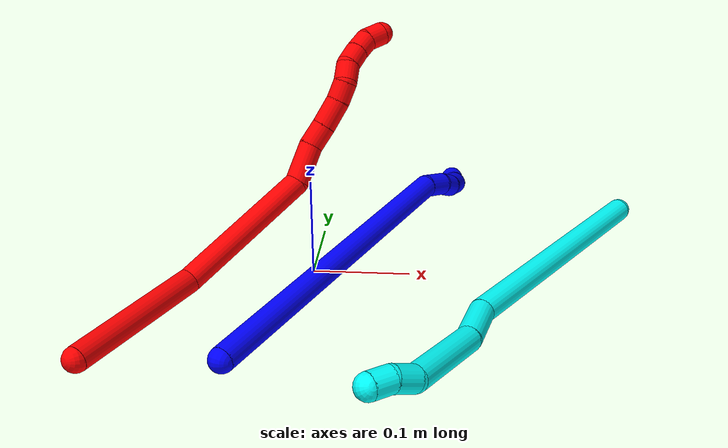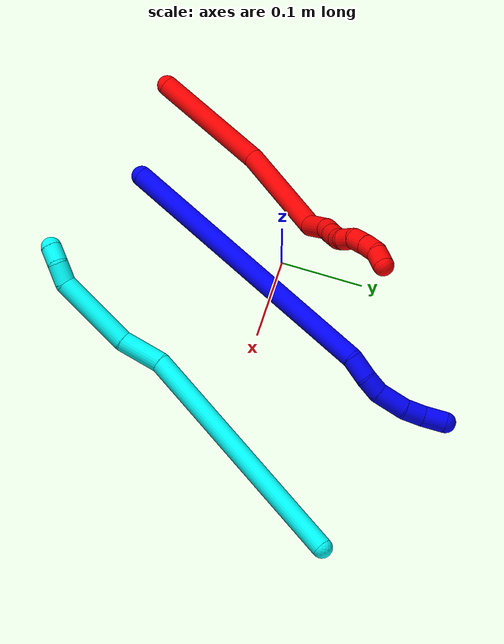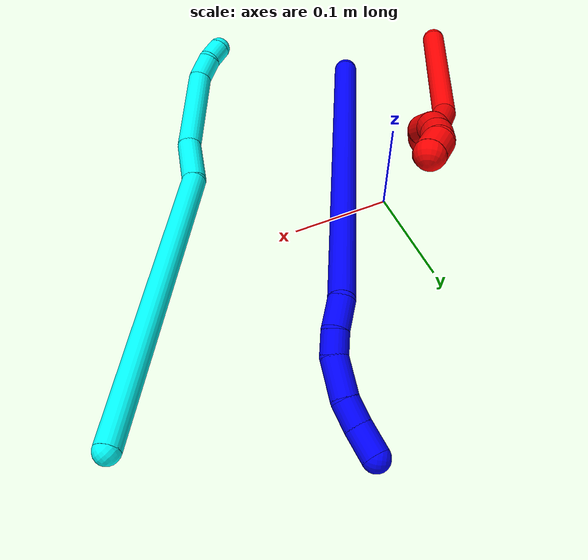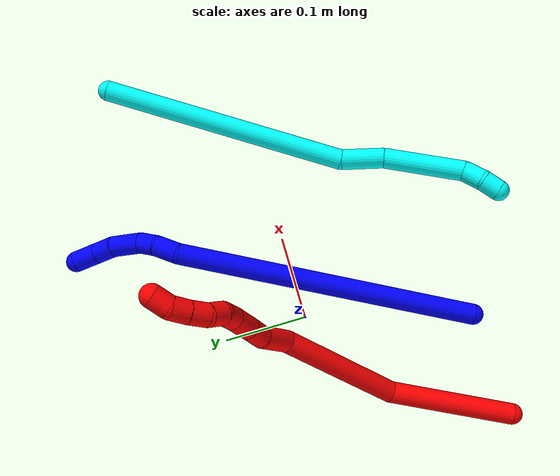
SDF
<sdf version="1.7">
 <world name="default">
  <plugin name="TubeGeneratorPlugin" filename="libtube_generator_plugin.so"/>
  <model name="photoneo_s_sensor">
   <static>1</static>
   <pose>0 0 2 1.57079 1.57079 3.14159</pose>
   <link name="link">
    <inertial><mass>0.1</mass></inertial>
    <sensor name="sensor" type="depth">
     <update_rate>30</update_rate>
     <camera>
      <horizontal_fov>1.22</horizontal_fov>
      <image><width>1920</width><height>1200</height><format>B8G8R8</format></image>
      <clip><near>0.1</near><far>4</far></clip>
      <depth_camera><output>points</output></depth_camera>
     </camera>
     <plugin name="camera_plugin" filename="libgazebo_ros_depth_camera.so">
      <baseline>0.2</baseline>
      <alwaysOn>1</alwaysOn>
      <updateRate>0.0</updateRate>
      <cameraName>camera_ir</cameraName>
      <imageTopicName>/camera/color/image_raw</imageTopicName>
      <cameraInfoTopicName>/camera/color/camera_info</cameraInfoTopicName>
      <depthImageTopicName>/camera/depth/image_raw</depthImageTopicName>
      <depthImageCameraInfoTopicName>/camera/depth/camera_info</depthImageCameraInfoTopicName>
      <pointCloudTopicName>/camera/depth/points</pointCloudTopicName>
      <frameName>fr_optical</frameName>
      <pointCloudCutoff>0.1</pointCloudCutoff>
      <pointCloudCutoffMax>2.0</pointCloudCutoffMax>
      <distortionK1>0</distortionK1>
      <distortionK2>0</distortionK2>
      <distortionK3>0</distortionK3>
      <distortionT1>0</distortionT1>
      <distortionT2>0</distortionT2>
      <CxPrime>0</CxPrime>
      <Cx>0</Cx>
      <Cy>0</Cy>
      <focalLength>0</focalLength>
      <hackBaseline>0</hackBaseline>
     </plugin>
    </sensor>
   </link>
  </model>
  <gravity>0 0 -9.8</gravity>
  <magnetic_field>6e-06 2.3e-05 -4.2e-05</magnetic_field>
  <atmosphere type="adiabatic"/>
  <physics name="default_physics" default="0" type="ode">
   <max_step_size>0.003</max_step_size>
   <real_time_factor>1</real_time_factor>
   <real_time_update_rate>1000</real_time_update_rate>
   <max_contacts>10000</max_contacts>
   <ode>
    <solver>
     <type>quick</type>
     <iters>100</iters>
     <sor>1.3</sor>
     <use_dynamic_moi_rescaling>0</use_dynamic_moi_rescaling>
    </solver>
    <constraints>
     <contact_max_correcting_vel>0</contact_max_correcting_vel>
     <contact_surface_layer>0.001</contact_surface_layer>
     <cfm>0</cfm>
     <erp>0.2</erp>
    </constraints>
   </ode>
  </physics>
  <scene><ambient>0.4 0.4 0.4 1</ambient><background>0.7 0.7 0.7 1</background><shadows>0</shadows></scene>
  <audio><device>default</device></audio>
  <spherical_coordinates>
   <surface_model>EARTH_WGS84</surface_model>
   <latitude_deg>0</latitude_deg>
   <longitude_deg>0</longitude_deg>
   <elevation>0</elevation>
   <heading_deg>0</heading_deg>
  </spherical_coordinates>
  <model name="bin">
   <static>1</static>
   <link name="bottom">
    <collision name="collision-bottom">
     <pose>0 0 -0.01 0 -0 0</pose>
     <geometry><box><size>0.8 0.6 0.02</size></box></geometry>
     <surface>
      <friction><ode><mu>100</mu><mu2>100</mu2></ode></friction>
      <contact><collide_bitmask>65535</collide_bitmask></contact>
     </surface>
    </collision>
   </link>
   <link name="west_wall">
    <collision name="collision-west_wall">
     <pose>-0.41 0 0.1 0 -0 0</pose>
     <geometry><box><size>0.02 0.6 0.2</size></box></geometry>
     <surface>
      <friction><ode><mu>100</mu><mu2>100</mu2></ode></friction>
      <contact><collide_bitmask>65535</collide_bitmask></contact>
     </surface>
    </collision>
   </link>
   <link name="east_wall">
    <collision name="collision-east_wall">
     <pose>0.41 0 0.1 0 -0 0</pose>
     <geometry><box><size>0.02 0.6 0.2</size></box></geometry>
     <surface>
      <friction><ode><mu>100</mu><mu2>100</mu2></ode></friction>
      <contact><collide_bitmask>65535</collide_bitmask></contact>
     </surface>
    </collision>
   </link>
   <link name="south_wall">
    <collision name="collision-south_wall">
     <pose>0 -0.31 0.1 0 -0 0</pose>
     <geometry><box><size>0.8 0.02 0.2</size></box></geometry>
     <surface>
      <friction><ode><mu>100</mu><mu2>100</mu2></ode></friction>
      <contact><collide_bitmask>65535</collide_bitmask></contact>
     </surface>
    </collision>
   </link>
   <link name="north_wall">
    <collision name="collision-north_wall">
     <pose>0 0.31 0.1 0 -0 0</pose>
     <geometry><box><size>0.8 0.02 0.2</size></box></geometry>
     <surface>
      <friction><ode><mu>100</mu><mu2>100</mu2></ode></friction>
      <contact><collide_bitmask>65535</collide_bitmask></contact>
     </surface>
    </collision>
   </link>
  </model>
  <model name="1">
   <static>0</static>
   <link name="1">
    <collision name="collision-cylinder-e_1_1_4">
     <pose>0.099813 0.14904 -0.016868 -1.68349 0.587169 -0.652725</pose>
     <geometry><cylinder><radius>0.0125</radius><length>0.360333</length></cylinder></geometry>
     <surface>
      <friction><ode><mu>1.16</mu><mu2>1.16</mu2><slip1>0</slip1><slip2>0</slip2></ode></friction>
      <contact><ode><kp>1e+06</kp><kd>1</kd><max_vel>0</max_vel><min_depth>0.001</min_depth></ode></contact>
     </surface>
    </collision>
    <visual name="visual-cylinder-e_1_1_4">
     <pose>0.099813 0.14904 -0.016868 -1.68349 0.587169 -0.652725</pose>
     <geometry><cylinder><radius>0.0125</radius><length>0.360333</length></cylinder></geometry>
     <material><ambient>0 0 1 1</ambient></material>
    </visual>
    <collision name="collision-cylinder-e_2_4_5">
     <pose>0.211166 0.306949 -0.033091 -1.49834 0.914186 -0.858026</pose>
     <geometry><cylinder><radius>0.0125</radius><length>0.029138</length></cylinder></geometry>
     <surface>
      <friction><ode><mu>1.16</mu><mu2>1.16</mu2><slip1>0</slip1><slip2>0</slip2></ode></friction>
      <contact><ode><kp>1e+06</kp><kd>1</kd><max_vel>0</max_vel><min_depth>0.001</min_depth></ode></contact>
     </surface>
    </collision>
    <visual name="visual-cylinder-e_2_4_5">
     <pose>0.211166 0.306949 -0.033091 -1.49834 0.914186 -0.858026</pose>
     <geometry><cylinder><radius>0.0125</radius><length>0.029138</length></cylinder></geometry>
     <material><ambient>0 0 1 1</ambient></material>
    </visual>
    <collision name="collision-cylinder-e_3_5_6">
     <pose>0.232612 0.320755 -0.033668 -1.81334 1.09662 -1.32524</pose>
     <geometry><cylinder><radius>0.0125</radius><length>0.022269</length></cylinder></geometry>
     <surface>
      <friction><ode><mu>1.16</mu><mu2>1.16</mu2><slip1>0</slip1><slip2>0</slip2></ode></friction>
      <contact><ode><kp>1e+06</kp><kd>1</kd><max_vel>0</max_vel><min_depth>0.001</min_depth></ode></contact>
     </surface>
    </collision>
    <visual name="visual-cylinder-e_3_5_6">
     <pose>0.232612 0.320755 -0.033668 -1.81334 1.09662 -1.32524</pose>
     <geometry><cylinder><radius>0.0125</radius><length>0.022269</length></cylinder></geometry>
     <material><ambient>0 0 1 1</ambient></material>
    </visual>
    <collision name="collision-cylinder-e_4_6_7">
     <pose>0.256627 0.334915 -0.042009 -2.22809 0.880444 -1.5285</pose>
     <geometry><cylinder><radius>0.0125</radius><length>0.036598</length></cylinder></geometry>
     <surface>
      <friction><ode><mu>1.16</mu><mu2>1.16</mu2><slip1>0</slip1><slip2>0</slip2></ode></friction>
      <contact><ode><kp>1e+06</kp><kd>1</kd><max_vel>0</max_vel><min_depth>0.001</min_depth></ode></contact>
     </surface>
    </collision>
    <visual name="visual-cylinder-e_4_6_7">
     <pose>0.256627 0.334915 -0.042009 -2.22809 0.880444 -1.5285</pose>
     <geometry><cylinder><radius>0.0125</radius><length>0.036598</length></cylinder></geometry>
     <material><ambient>0 0 1 1</ambient></material>
    </visual>
    <collision name="collision-cylinder-e_5_7_8">
     <pose>0.279228 0.348894 -0.056083 -2.54193 0.789396 -1.86466</pose>
     <geometry><cylinder><radius>0.0125</radius><length>0.023922</length></cylinder></geometry>
     <surface>
      <friction><ode><mu>1.16</mu><mu2>1.16</mu2><slip1>0</slip1><slip2>0</slip2></ode></friction>
      <contact><ode><kp>1e+06</kp><kd>1</kd><max_vel>0</max_vel><min_depth>0.001</min_depth></ode></contact>
     </surface>
    </collision>
    <visual name="visual-cylinder-e_5_7_8">
     <pose>0.279228 0.348894 -0.056083 -2.54193 0.789396 -1.86466</pose>
     <geometry><cylinder><radius>0.0125</radius><length>0.023922</length></cylinder></geometry>
     <material><ambient>0 0 1 1</ambient></material>
    </visual>
    <collision name="collision-cylinder-e_6_8_2">
     <pose>0.296079 0.360671 -0.071591 -2.45417 0.646966 -1.50544</pose>
     <geometry><cylinder><radius>0.0125</radius><length>0.027739</length></cylinder></geometry>
     <surface>
      <friction><ode><mu>1.16</mu><mu2>1.16</mu2><slip1>0</slip1><slip2>0</slip2></ode></friction>
      <contact><ode><kp>1e+06</kp><kd>1</kd><max_vel>0</max_vel><min_depth>0.001</min_depth></ode></contact>
     </surface>
    </collision>
    <visual name="visual-cylinder-e_6_8_2">
     <pose>0.296079 0.360671 -0.071591 -2.45417 0.646966 -1.50544</pose>
     <geometry><cylinder><radius>0.0125</radius><length>0.027739</length></cylinder></geometry>
     <material><ambient>0 0 1 1</ambient></material>
    </visual>
    <collision name="collision-sphere-2">
     <pose>0.30444 0.367693 -0.080144 0 -0 0</pose>
     <geometry><sphere><radius>0.0125</radius></sphere></geometry>
     <surface>
      <friction><ode><mu>1.16</mu><mu2>1.16</mu2><slip1>0</slip1><slip2>0</slip2></ode></friction>
      <contact><ode><kp>1e+06</kp><kd>1</kd><max_vel>0</max_vel><min_depth>0.001</min_depth></ode></contact>
     </surface>
    </collision>
    <visual name="visual-sphere-2">
     <pose>0.30444 0.367693 -0.080144 0 -0 0</pose>
     <geometry><sphere><radius>0.0125</radius></sphere></geometry>
     <material><ambient>0 0 1 1</ambient></material>
    </visual>
    <collision name="collision-sphere-4">
     <pose>0.199627 0.298079 -0.033735 0 -0 0</pose>
     <geometry><sphere><radius>0.0125</radius></sphere></geometry>
     <surface>
      <friction><ode><mu>1.16</mu><mu2>1.16</mu2><slip1>0</slip1><slip2>0</slip2></ode></friction>
      <contact><ode><kp>1e+06</kp><kd>1</kd><max_vel>0</max_vel><min_depth>0.001</min_depth></ode></contact>
     </surface>
    </collision>
    <visual name="visual-sphere-4">
     <pose>0.199627 0.298079 -0.033735 0 -0 0</pose>
     <geometry><sphere><radius>0.0125</radius></sphere></geometry>
     <material><ambient>0 0 1 1</ambient></material>
    </visual>
    <collision name="collision-sphere-1">
     <geometry><sphere><radius>0.0125</radius></sphere></geometry>
     <surface>
      <friction><ode><mu>1.16</mu><mu2>1.16</mu2><slip1>0</slip1><slip2>0</slip2></ode></friction>
      <contact><ode><kp>1e+06</kp><kd>1</kd><max_vel>0</max_vel><min_depth>0.001</min_depth></ode></contact>
     </surface>
    </collision>
    <visual name="visual-sphere-1">
     <geometry><sphere><radius>0.0125</radius></sphere></geometry>
     <material><ambient>0 0 1 1</ambient></material>
    </visual>
    <collision name="collision-sphere-8">
     <pose>0.287719 0.353649 -0.063037 0 -0 0</pose>
     <geometry><sphere><radius>0.0125</radius></sphere></geometry>
     <surface>
      <friction><ode><mu>1.16</mu><mu2>1.16</mu2><slip1>0</slip1><slip2>0</slip2></ode></friction>
      <contact><ode><kp>1e+06</kp><kd>1</kd><max_vel>0</max_vel><min_depth>0.001</min_depth></ode></contact>
     </surface>
    </collision>
    <visual name="visual-sphere-8">
     <pose>0.287719 0.353649 -0.063037 0 -0 0</pose>
     <geometry><sphere><radius>0.0125</radius></sphere></geometry>
     <material><ambient>0 0 1 1</ambient></material>
    </visual>
    <collision name="collision-sphere-5">
     <pose>0.222706 0.315819 -0.032447 0 -0 0</pose>
     <geometry><sphere><radius>0.0125</radius></sphere></geometry>
     <surface>
      <friction><ode><mu>1.16</mu><mu2>1.16</mu2><slip1>0</slip1><slip2>0</slip2></ode></friction>
      <contact><ode><kp>1e+06</kp><kd>1</kd><max_vel>0</max_vel><min_depth>0.001</min_depth></ode></contact>
     </surface>
    </collision>
    <visual name="visual-sphere-5">
     <pose>0.222706 0.315819 -0.032447 0 -0 0</pose>
     <geometry><sphere><radius>0.0125</radius></sphere></geometry>
     <material><ambient>0 0 1 1</ambient></material>
    </visual>
    <collision name="collision-sphere-6">
     <pose>0.242518 0.32569 -0.034889 0 -0 0</pose>
     <geometry><sphere><radius>0.0125</radius></sphere></geometry>
     <surface>
      <friction><ode><mu>1.16</mu><mu2>1.16</mu2><slip1>0</slip1><slip2>0</slip2></ode></friction>
      <contact><ode><kp>1e+06</kp><kd>1</kd><max_vel>0</max_vel><min_depth>0.001</min_depth></ode></contact>
     </surface>
    </collision>
    <visual name="visual-sphere-6">
     <pose>0.242518 0.32569 -0.034889 0 -0 0</pose>
     <geometry><sphere><radius>0.0125</radius></sphere></geometry>
     <material><ambient>0 0 1 1</ambient></material>
    </visual>
    <collision name="collision-sphere-7">
     <pose>0.270736 0.34414 -0.049129 0 -0 0</pose>
     <geometry><sphere><radius>0.0125</radius></sphere></geometry>
     <surface>
      <friction><ode><mu>1.16</mu><mu2>1.16</mu2><slip1>0</slip1><slip2>0</slip2></ode></friction>
      <contact><ode><kp>1e+06</kp><kd>1</kd><max_vel>0</max_vel><min_depth>0.001</min_depth></ode></contact>
     </surface>
    </collision>
    <visual name="visual-sphere-7">
     <pose>0.270736 0.34414 -0.049129 0 -0 0</pose>
     <geometry><sphere><radius>0.0125</radius></sphere></geometry>
     <material><ambient>0 0 1 1</ambient></material>
    </visual>
    <inertial>
     <pose>0.143168 0.200798 -0.025314 0 -0 0</pose>
     <mass>0.5</mass>
     <inertia>
      <ixx>0.000625</ixx>
      <ixy>0</ixy>
      <ixz>0</ixz>
      <iyy>-0.000992</iyy>
      <iyz>0</iyz>
      <izz>-0.00543</izz>
     </inertia>
    </inertial>
   </link>
   <pose>-0.053591 -0.195094 0.011497 1.47543 0.866222 0.913418</pose>
  </model>
  <model name="2">
   <static>0</static>
   <link name="2">
    <collision name="collision-cylinder-e_1_1_4">
     <pose>-0.021029 0.00911 -0.070525 -3.01313 -0.287527 2.30536</pose>
     <geometry><cylinder><radius>0.0125</radius><length>0.148311</length></cylinder></geometry>
     <surface>
      <friction><ode><mu>1.16</mu><mu2>1.16</mu2><slip1>0</slip1><slip2>0</slip2></ode></friction>
      <contact><ode><kp>1e+06</kp><kd>1</kd><max_vel>0</max_vel><min_depth>0.001</min_depth></ode></contact>
     </surface>
    </collision>
    <visual name="visual-cylinder-e_1_1_4">
     <pose>-0.021029 0.00911 -0.070525 -3.01313 -0.287527 2.30536</pose>
     <geometry><cylinder><radius>0.0125</radius><length>0.148311</length></cylinder></geometry>
     <material><ambient>1 0 0 1</ambient></material>
    </visual>
    <collision name="collision-cylinder-e_2_4_5">
     <pose>-0.061336 0.060122 -0.201105 -2.53238 -0.257422 0.781061</pose>
     <geometry><cylinder><radius>0.0125</radius><length>0.151445</length></cylinder></geometry>
     <surface>
      <friction><ode><mu>1.16</mu><mu2>1.16</mu2><slip1>0</slip1><slip2>0</slip2></ode></friction>
      <contact><ode><kp>1e+06</kp><kd>1</kd><max_vel>0</max_vel><min_depth>0.001</min_depth></ode></contact>
     </surface>
    </collision>
    <visual name="visual-cylinder-e_2_4_5">
     <pose>-0.061336 0.060122 -0.201105 -2.53238 -0.257422 0.781061</pose>
     <geometry><cylinder><radius>0.0125</radius><length>0.151445</length></cylinder></geometry>
     <material><ambient>1 0 0 1</ambient></material>
    </visual>
    <collision name="collision-cylinder-e_3_5_6">
     <pose>-0.09277 0.116228 -0.27082 -2.16815 -0.615843 1.0823</pose>
     <geometry><cylinder><radius>0.0125</radius><length>0.042087</length></cylinder></geometry>
     <surface>
      <friction><ode><mu>1.16</mu><mu2>1.16</mu2><slip1>0</slip1><slip2>0</slip2></ode></friction>
      <contact><ode><kp>1e+06</kp><kd>1</kd><max_vel>0</max_vel><min_depth>0.001</min_depth></ode></contact>
     </surface>
    </collision>
    <visual name="visual-cylinder-e_3_5_6">
     <pose>-0.09277 0.116228 -0.27082 -2.16815 -0.615843 1.0823</pose>
     <geometry><cylinder><radius>0.0125</radius><length>0.042087</length></cylinder></geometry>
     <material><ambient>1 0 0 1</ambient></material>
    </visual>
    <collision name="collision-cylinder-e_4_6_7">
     <pose>-0.109232 0.14073 -0.286199 -2.07754 -0.350478 0.584357</pose>
     <geometry><cylinder><radius>0.0125</radius><length>0.025084</length></cylinder></geometry>
     <surface>
      <friction><ode><mu>1.16</mu><mu2>1.16</mu2><slip1>0</slip1><slip2>0</slip2></ode></friction>
      <contact><ode><kp>1e+06</kp><kd>1</kd><max_vel>0</max_vel><min_depth>0.001</min_depth></ode></contact>
     </surface>
    </collision>
    <visual name="visual-cylinder-e_4_6_7">
     <pose>-0.109232 0.14073 -0.286199 -2.07754 -0.350478 0.584357</pose>
     <geometry><cylinder><radius>0.0125</radius><length>0.025084</length></cylinder></geometry>
     <material><ambient>1 0 0 1</ambient></material>
    </visual>
    <collision name="collision-cylinder-e_5_7_8">
     <pose>-0.119283 0.163503 -0.298205 -2.03781 -0.390137 0.621037</pose>
     <geometry><cylinder><radius>0.0125</radius><length>0.030209</length></cylinder></geometry>
     <surface>
      <friction><ode><mu>1.16</mu><mu2>1.16</mu2><slip1>0</slip1><slip2>0</slip2></ode></friction>
      <contact><ode><kp>1e+06</kp><kd>1</kd><max_vel>0</max_vel><min_depth>0.001</min_depth></ode></contact>
     </surface>
    </collision>
    <visual name="visual-cylinder-e_5_7_8">
     <pose>-0.119283 0.163503 -0.298205 -2.03781 -0.390137 0.621037</pose>
     <geometry><cylinder><radius>0.0125</radius><length>0.030209</length></cylinder></geometry>
     <material><ambient>1 0 0 1</ambient></material>
    </visual>
    <collision name="collision-cylinder-e_6_8_9">
     <pose>-0.130183 0.184756 -0.30773 -1.92386 -0.503602 0.706956</pose>
     <geometry><cylinder><radius>0.0125</radius><length>0.021365</length></cylinder></geometry>
     <surface>
      <friction><ode><mu>1.16</mu><mu2>1.16</mu2><slip1>0</slip1><slip2>0</slip2></ode></friction>
      <contact><ode><kp>1e+06</kp><kd>1</kd><max_vel>0</max_vel><min_depth>0.001</min_depth></ode></contact>
     </surface>
    </collision>
    <visual name="visual-cylinder-e_6_8_9">
     <pose>-0.130183 0.184756 -0.30773 -1.92386 -0.503602 0.706956</pose>
     <geometry><cylinder><radius>0.0125</radius><length>0.021365</length></cylinder></geometry>
     <material><ambient>1 0 0 1</ambient></material>
    </visual>
    <collision name="collision-cylinder-e_7_9_10">
     <pose>-0.142936 0.198845 -0.315231 -2.24758 -0.839915 1.49988</pose>
     <geometry><cylinder><radius>0.0125</radius><length>0.020409</length></cylinder></geometry>
     <surface>
      <friction><ode><mu>1.16</mu><mu2>1.16</mu2><slip1>0</slip1><slip2>0</slip2></ode></friction>
      <contact><ode><kp>1e+06</kp><kd>1</kd><max_vel>0</max_vel><min_depth>0.001</min_depth></ode></contact>
     </surface>
    </collision>
    <visual name="visual-cylinder-e_7_9_10">
     <pose>-0.142936 0.198845 -0.315231 -2.24758 -0.839915 1.49988</pose>
     <geometry><cylinder><radius>0.0125</radius><length>0.020409</length></cylinder></geometry>
     <material><ambient>1 0 0 1</ambient></material>
    </visual>
    <collision name="collision-cylinder-e_8_10_11">
     <pose>-0.155806 0.208764 -0.327222 -2.60363 -0.530146 1.55544</pose>
     <geometry><cylinder><radius>0.0125</radius><length>0.020853</length></cylinder></geometry>
     <surface>
      <friction><ode><mu>1.16</mu><mu2>1.16</mu2><slip1>0</slip1><slip2>0</slip2></ode></friction>
      <contact><ode><kp>1e+06</kp><kd>1</kd><max_vel>0</max_vel><min_depth>0.001</min_depth></ode></contact>
     </surface>
    </collision>
    <visual name="visual-cylinder-e_8_10_11">
     <pose>-0.155806 0.208764 -0.327222 -2.60363 -0.530146 1.55544</pose>
     <geometry><cylinder><radius>0.0125</radius><length>0.020853</length></cylinder></geometry>
     <material><ambient>1 0 0 1</ambient></material>
    </visual>
    <collision name="collision-cylinder-e_9_11_12">
     <pose>-0.165312 0.218088 -0.342787 -2.60026 -0.433383 1.3414</pose>
     <geometry><cylinder><radius>0.0125</radius><length>0.020161</length></cylinder></geometry>
     <surface>
      <friction><ode><mu>1.16</mu><mu2>1.16</mu2><slip1>0</slip1><slip2>0</slip2></ode></friction>
      <contact><ode><kp>1e+06</kp><kd>1</kd><max_vel>0</max_vel><min_depth>0.001</min_depth></ode></contact>
     </surface>
    </collision>
    <visual name="visual-cylinder-e_9_11_12">
     <pose>-0.165312 0.218088 -0.342787 -2.60026 -0.433383 1.3414</pose>
     <geometry><cylinder><radius>0.0125</radius><length>0.020161</length></cylinder></geometry>
     <material><ambient>1 0 0 1</ambient></material>
    </visual>
    <collision name="collision-cylinder-e_10_12_2">
     <pose>-0.169834 0.227399 -0.359546 -2.66561 -0.028791 0.11855</pose>
     <geometry><cylinder><radius>0.0125</radius><length>0.020075</length></cylinder></geometry>
     <surface>
      <friction><ode><mu>1.16</mu><mu2>1.16</mu2><slip1>0</slip1><slip2>0</slip2></ode></friction>
      <contact><ode><kp>1e+06</kp><kd>1</kd><max_vel>0</max_vel><min_depth>0.001</min_depth></ode></contact>
     </surface>
    </collision>
    <visual name="visual-cylinder-e_10_12_2">
     <pose>-0.169834 0.227399 -0.359546 -2.66561 -0.028791 0.11855</pose>
     <geometry><cylinder><radius>0.0125</radius><length>0.020075</length></cylinder></geometry>
     <material><ambient>1 0 0 1</ambient></material>
    </visual>
    <collision name="collision-sphere-2">
     <pose>-0.170123 0.231997 -0.368464 0 -0 0</pose>
     <geometry><sphere><radius>0.0125</radius></sphere></geometry>
     <surface>
      <friction><ode><mu>1.16</mu><mu2>1.16</mu2><slip1>0</slip1><slip2>0</slip2></ode></friction>
      <contact><ode><kp>1e+06</kp><kd>1</kd><max_vel>0</max_vel><min_depth>0.001</min_depth></ode></contact>
     </surface>
    </collision>
    <visual name="visual-sphere-2">
     <pose>-0.170123 0.231997 -0.368464 0 -0 0</pose>
     <geometry><sphere><radius>0.0125</radius></sphere></geometry>
     <material><ambient>1 0 0 1</ambient></material>
    </visual>
    <collision name="collision-sphere-12">
     <pose>-0.169545 0.222802 -0.350628 0 -0 0</pose>
     <geometry><sphere><radius>0.0125</radius></sphere></geometry>
     <surface>
      <friction><ode><mu>1.16</mu><mu2>1.16</mu2><slip1>0</slip1><slip2>0</slip2></ode></friction>
      <contact><ode><kp>1e+06</kp><kd>1</kd><max_vel>0</max_vel><min_depth>0.001</min_depth></ode></contact>
     </surface>
    </collision>
    <visual name="visual-sphere-12">
     <pose>-0.169545 0.222802 -0.350628 0 -0 0</pose>
     <geometry><sphere><radius>0.0125</radius></sphere></geometry>
     <material><ambient>1 0 0 1</ambient></material>
    </visual>
    <collision name="collision-sphere-11">
     <pose>-0.161079 0.213374 -0.334947 0 -0 0</pose>
     <geometry><sphere><radius>0.0125</radius></sphere></geometry>
     <surface>
      <friction><ode><mu>1.16</mu><mu2>1.16</mu2><slip1>0</slip1><slip2>0</slip2></ode></friction>
      <contact><ode><kp>1e+06</kp><kd>1</kd><max_vel>0</max_vel><min_depth>0.001</min_depth></ode></contact>
     </surface>
    </collision>
    <visual name="visual-sphere-11">
     <pose>-0.161079 0.213374 -0.334947 0 -0 0</pose>
     <geometry><sphere><radius>0.0125</radius></sphere></geometry>
     <material><ambient>1 0 0 1</ambient></material>
    </visual>
    <collision name="collision-sphere-10">
     <pose>-0.150534 0.204155 -0.319497 0 -0 0</pose>
     <geometry><sphere><radius>0.0125</radius></sphere></geometry>
     <surface>
      <friction><ode><mu>1.16</mu><mu2>1.16</mu2><slip1>0</slip1><slip2>0</slip2></ode></friction>
      <contact><ode><kp>1e+06</kp><kd>1</kd><max_vel>0</max_vel><min_depth>0.001</min_depth></ode></contact>
     </surface>
    </collision>
    <visual name="visual-sphere-10">
     <pose>-0.150534 0.204155 -0.319497 0 -0 0</pose>
     <geometry><sphere><radius>0.0125</radius></sphere></geometry>
     <material><ambient>1 0 0 1</ambient></material>
    </visual>
    <collision name="collision-sphere-9">
     <pose>-0.135338 0.193535 -0.310965 0 -0 0</pose>
     <geometry><sphere><radius>0.0125</radius></sphere></geometry>
     <surface>
      <friction><ode><mu>1.16</mu><mu2>1.16</mu2><slip1>0</slip1><slip2>0</slip2></ode></friction>
      <contact><ode><kp>1e+06</kp><kd>1</kd><max_vel>0</max_vel><min_depth>0.001</min_depth></ode></contact>
     </surface>
    </collision>
    <visual name="visual-sphere-9">
     <pose>-0.135338 0.193535 -0.310965 0 -0 0</pose>
     <geometry><sphere><radius>0.0125</radius></sphere></geometry>
     <material><ambient>1 0 0 1</ambient></material>
    </visual>
    <collision name="collision-sphere-4">
     <pose>-0.042058 0.01822 -0.141051 0 -0 0</pose>
     <geometry><sphere><radius>0.0125</radius></sphere></geometry>
     <surface>
      <friction><ode><mu>1.16</mu><mu2>1.16</mu2><slip1>0</slip1><slip2>0</slip2></ode></friction>
      <contact><ode><kp>1e+06</kp><kd>1</kd><max_vel>0</max_vel><min_depth>0.001</min_depth></ode></contact>
     </surface>
    </collision>
    <visual name="visual-sphere-4">
     <pose>-0.042058 0.01822 -0.141051 0 -0 0</pose>
     <geometry><sphere><radius>0.0125</radius></sphere></geometry>
     <material><ambient>1 0 0 1</ambient></material>
    </visual>
    <collision name="collision-sphere-1">
     <geometry><sphere><radius>0.0125</radius></sphere></geometry>
     <surface>
      <friction><ode><mu>1.16</mu><mu2>1.16</mu2><slip1>0</slip1><slip2>0</slip2></ode></friction>
      <contact><ode><kp>1e+06</kp><kd>1</kd><max_vel>0</max_vel><min_depth>0.001</min_depth></ode></contact>
     </surface>
    </collision>
    <visual name="visual-sphere-1">
     <geometry><sphere><radius>0.0125</radius></sphere></geometry>
     <material><ambient>1 0 0 1</ambient></material>
    </visual>
    <collision name="collision-sphere-8">
     <pose>-0.125028 0.175976 -0.304495 0 -0 0</pose>
     <geometry><sphere><radius>0.0125</radius></sphere></geometry>
     <surface>
      <friction><ode><mu>1.16</mu><mu2>1.16</mu2><slip1>0</slip1><slip2>0</slip2></ode></friction>
      <contact><ode><kp>1e+06</kp><kd>1</kd><max_vel>0</max_vel><min_depth>0.001</min_depth></ode></contact>
     </surface>
    </collision>
    <visual name="visual-sphere-8">
     <pose>-0.125028 0.175976 -0.304495 0 -0 0</pose>
     <geometry><sphere><radius>0.0125</radius></sphere></geometry>
     <material><ambient>1 0 0 1</ambient></material>
    </visual>
    <collision name="collision-sphere-5">
     <pose>-0.080614 0.102025 -0.261158 0 -0 0</pose>
     <geometry><sphere><radius>0.0125</radius></sphere></geometry>
     <surface>
      <friction><ode><mu>1.16</mu><mu2>1.16</mu2><slip1>0</slip1><slip2>0</slip2></ode></friction>
      <contact><ode><kp>1e+06</kp><kd>1</kd><max_vel>0</max_vel><min_depth>0.001</min_depth></ode></contact>
     </surface>
    </collision>
    <visual name="visual-sphere-5">
     <pose>-0.080614 0.102025 -0.261158 0 -0 0</pose>
     <geometry><sphere><radius>0.0125</radius></sphere></geometry>
     <material><ambient>1 0 0 1</ambient></material>
    </visual>
    <collision name="collision-sphere-6">
     <pose>-0.104926 0.130431 -0.280482 0 -0 0</pose>
     <geometry><sphere><radius>0.0125</radius></sphere></geometry>
     <surface>
      <friction><ode><mu>1.16</mu><mu2>1.16</mu2><slip1>0</slip1><slip2>0</slip2></ode></friction>
      <contact><ode><kp>1e+06</kp><kd>1</kd><max_vel>0</max_vel><min_depth>0.001</min_depth></ode></contact>
     </surface>
    </collision>
    <visual name="visual-sphere-6">
     <pose>-0.104926 0.130431 -0.280482 0 -0 0</pose>
     <geometry><sphere><radius>0.0125</radius></sphere></geometry>
     <material><ambient>1 0 0 1</ambient></material>
    </visual>
    <collision name="collision-sphere-7">
     <pose>-0.113539 0.151029 -0.291916 0 -0 0</pose>
     <geometry><sphere><radius>0.0125</radius></sphere></geometry>
     <surface>
      <friction><ode><mu>1.16</mu><mu2>1.16</mu2><slip1>0</slip1><slip2>0</slip2></ode></friction>
      <contact><ode><kp>1e+06</kp><kd>1</kd><max_vel>0</max_vel><min_depth>0.001</min_depth></ode></contact>
     </surface>
    </collision>
    <visual name="visual-sphere-7">
     <pose>-0.113539 0.151029 -0.291916 0 -0 0</pose>
     <geometry><sphere><radius>0.0125</radius></sphere></geometry>
     <material><ambient>1 0 0 1</ambient></material>
    </visual>
    <inertial>
     <pose>-0.076691 0.090277 -0.204925 0 -0 0</pose>
     <mass>0.5</mass>
     <inertia>
      <ixx>0.000434</ixx>
      <ixy>0</ixy>
      <ixz>0</ixz>
      <iyy>0.000481</iyy>
      <iyz>0</iyz>
      <izz>-7.7e-05</izz>
     </inertia>
    </inertial>
   </link>
   <pose>-0.1792 -0.203448 0.012206 1.32873 0.589988 -0.769048</pose>
  </model>
  <model name="3">
   <static>0</static>
   <link name="3">
    <collision name="collision-cylinder-e_1_1_4">
     <pose>-0.098377 -0.095968 0.06097 1.00482 -0.713283 -0.403829</pose>
     <geometry><cylinder><radius>0.0125</radius><length>0.300702</length></cylinder></geometry>
     <surface>
      <friction><ode><mu>1.16</mu><mu2>1.16</mu2><slip1>0</slip1><slip2>0</slip2></ode></friction>
      <contact><ode><kp>1e+06</kp><kd>1</kd><max_vel>0</max_vel><min_depth>0.001</min_depth></ode></contact>
     </surface>
    </collision>
    <visual name="visual-cylinder-e_1_1_4">
     <pose>-0.098377 -0.095968 0.06097 1.00482 -0.713283 -0.403829</pose>
     <geometry><cylinder><radius>0.0125</radius><length>0.300702</length></cylinder></geometry>
     <material><ambient>0.003922 1 0.996078 1</ambient></material>
    </visual>
    <collision name="collision-cylinder-e_2_4_5">
     <pose>-0.207548 -0.209225 0.138405 0.809772 -0.424576 -0.184219</pose>
     <geometry><cylinder><radius>0.0125</radius><length>0.052402</length></cylinder></geometry>
     <surface>
      <friction><ode><mu>1.16</mu><mu2>1.16</mu2><slip1>0</slip1><slip2>0</slip2></ode></friction>
      <contact><ode><kp>1e+06</kp><kd>1</kd><max_vel>0</max_vel><min_depth>0.001</min_depth></ode></contact>
     </surface>
    </collision>
    <visual name="visual-cylinder-e_2_4_5">
     <pose>-0.207548 -0.209225 0.138405 0.809772 -0.424576 -0.184219</pose>
     <geometry><cylinder><radius>0.0125</radius><length>0.052402</length></cylinder></geometry>
     <material><ambient>0.003922 1 0.996078 1</ambient></material>
    </visual>
    <collision name="collision-cylinder-e_3_5_6">
     <pose>-0.249698 -0.25382 0.181652 0.795101 -0.686719 -0.298027</pose>
     <geometry><cylinder><radius>0.0125</radius><length>0.098917</length></cylinder></geometry>
     <surface>
      <friction><ode><mu>1.16</mu><mu2>1.16</mu2><slip1>0</slip1><slip2>0</slip2></ode></friction>
      <contact><ode><kp>1e+06</kp><kd>1</kd><max_vel>0</max_vel><min_depth>0.001</min_depth></ode></contact>
     </surface>
    </collision>
    <visual name="visual-cylinder-e_3_5_6">
     <pose>-0.249698 -0.25382 0.181652 0.795101 -0.686719 -0.298027</pose>
     <geometry><cylinder><radius>0.0125</radius><length>0.098917</length></cylinder></geometry>
     <material><ambient>0.003922 1 0.996078 1</ambient></material>
    </visual>
    <collision name="collision-cylinder-e_4_6_7">
     <pose>-0.292672 -0.284355 0.21311 0.604267 -1.11583 -0.384205</pose>
     <geometry><cylinder><radius>0.0125</radius><length>0.025866</length></cylinder></geometry>
     <surface>
      <friction><ode><mu>1.16</mu><mu2>1.16</mu2><slip1>0</slip1><slip2>0</slip2></ode></friction>
      <contact><ode><kp>1e+06</kp><kd>1</kd><max_vel>0</max_vel><min_depth>0.001</min_depth></ode></contact>
     </surface>
    </collision>
    <visual name="visual-cylinder-e_4_6_7">
     <pose>-0.292672 -0.284355 0.21311 0.604267 -1.11583 -0.384205</pose>
     <geometry><cylinder><radius>0.0125</radius><length>0.025866</length></cylinder></geometry>
     <material><ambient>0.003922 1 0.996078 1</ambient></material>
    </visual>
    <collision name="collision-cylinder-e_5_7_2">
     <pose>-0.313553 -0.293272 0.219807 1.22951 -0.993285 -0.730881</pose>
     <geometry><cylinder><radius>0.0125</radius><length>0.022114</length></cylinder></geometry>
     <surface>
      <friction><ode><mu>1.16</mu><mu2>1.16</mu2><slip1>0</slip1><slip2>0</slip2></ode></friction>
      <contact><ode><kp>1e+06</kp><kd>1</kd><max_vel>0</max_vel><min_depth>0.001</min_depth></ode></contact>
     </surface>
    </collision>
    <visual name="visual-cylinder-e_5_7_2">
     <pose>-0.313553 -0.293272 0.219807 1.22951 -0.993285 -0.730881</pose>
     <geometry><cylinder><radius>0.0125</radius><length>0.022114</length></cylinder></geometry>
     <material><ambient>0.003922 1 0.996078 1</ambient></material>
    </visual>
    <collision name="collision-sphere-2">
     <pose>-0.322817 -0.29896 0.221828 0 -0 0</pose>
     <geometry><sphere><radius>0.0125</radius></sphere></geometry>
     <surface>
      <friction><ode><mu>1.16</mu><mu2>1.16</mu2><slip1>0</slip1><slip2>0</slip2></ode></friction>
      <contact><ode><kp>1e+06</kp><kd>1</kd><max_vel>0</max_vel><min_depth>0.001</min_depth></ode></contact>
     </surface>
    </collision>
    <visual name="visual-sphere-2">
     <pose>-0.322817 -0.29896 0.221828 0 -0 0</pose>
     <geometry><sphere><radius>0.0125</radius></sphere></geometry>
     <material><ambient>0.003922 1 0.996078 1</ambient></material>
    </visual>
    <collision name="collision-sphere-7">
     <pose>-0.304289 -0.287584 0.217787 0 -0 0</pose>
     <geometry><sphere><radius>0.0125</radius></sphere></geometry>
     <surface>
      <friction><ode><mu>1.16</mu><mu2>1.16</mu2><slip1>0</slip1><slip2>0</slip2></ode></friction>
      <contact><ode><kp>1e+06</kp><kd>1</kd><max_vel>0</max_vel><min_depth>0.001</min_depth></ode></contact>
     </surface>
    </collision>
    <visual name="visual-sphere-7">
     <pose>-0.304289 -0.287584 0.217787 0 -0 0</pose>
     <geometry><sphere><radius>0.0125</radius></sphere></geometry>
     <material><ambient>0.003922 1 0.996078 1</ambient></material>
    </visual>
    <collision name="collision-sphere-6">
     <pose>-0.281055 -0.281126 0.208434 0 -0 0</pose>
     <geometry><sphere><radius>0.0125</radius></sphere></geometry>
     <surface>
      <friction><ode><mu>1.16</mu><mu2>1.16</mu2><slip1>0</slip1><slip2>0</slip2></ode></friction>
      <contact><ode><kp>1e+06</kp><kd>1</kd><max_vel>0</max_vel><min_depth>0.001</min_depth></ode></contact>
     </surface>
    </collision>
    <visual name="visual-sphere-6">
     <pose>-0.281055 -0.281126 0.208434 0 -0 0</pose>
     <geometry><sphere><radius>0.0125</radius></sphere></geometry>
     <material><ambient>0.003922 1 0.996078 1</ambient></material>
    </visual>
    <collision name="collision-sphere-5">
     <pose>-0.218341 -0.226514 0.154871 0 -0 0</pose>
     <geometry><sphere><radius>0.0125</radius></sphere></geometry>
     <surface>
      <friction><ode><mu>1.16</mu><mu2>1.16</mu2><slip1>0</slip1><slip2>0</slip2></ode></friction>
      <contact><ode><kp>1e+06</kp><kd>1</kd><max_vel>0</max_vel><min_depth>0.001</min_depth></ode></contact>
     </surface>
    </collision>
    <visual name="visual-sphere-5">
     <pose>-0.218341 -0.226514 0.154871 0 -0 0</pose>
     <geometry><sphere><radius>0.0125</radius></sphere></geometry>
     <material><ambient>0.003922 1 0.996078 1</ambient></material>
    </visual>
    <collision name="collision-sphere-1">
     <geometry><sphere><radius>0.0125</radius></sphere></geometry>
     <surface>
      <friction><ode><mu>1.16</mu><mu2>1.16</mu2><slip1>0</slip1><slip2>0</slip2></ode></friction>
      <contact><ode><kp>1e+06</kp><kd>1</kd><max_vel>0</max_vel><min_depth>0.001</min_depth></ode></contact>
     </surface>
    </collision>
    <visual name="visual-sphere-1">
     <geometry><sphere><radius>0.0125</radius></sphere></geometry>
     <material><ambient>0.003922 1 0.996078 1</ambient></material>
    </visual>
    <collision name="collision-sphere-4">
     <pose>-0.196755 -0.191937 0.12194 0 -0 0</pose>
     <geometry><sphere><radius>0.0125</radius></sphere></geometry>
     <surface>
      <friction><ode><mu>1.16</mu><mu2>1.16</mu2><slip1>0</slip1><slip2>0</slip2></ode></friction>
      <contact><ode><kp>1e+06</kp><kd>1</kd><max_vel>0</max_vel><min_depth>0.001</min_depth></ode></contact>
     </surface>
    </collision>
    <visual name="visual-sphere-4">
     <pose>-0.196755 -0.191937 0.12194 0 -0 0</pose>
     <geometry><sphere><radius>0.0125</radius></sphere></geometry>
     <material><ambient>0.003922 1 0.996078 1</ambient></material>
    </visual>
    <inertial>
     <pose>-0.159323 -0.157538 0.107856 0 -0 0</pose>
     <mass>0.5</mass>
     <inertia>
      <ixx>0.000936</ixx>
      <ixy>0</ixy>
      <ixz>0</ixz>
      <iyy>0.000976</iyy>
      <iyz>0</iyz>
      <izz>0.003082</izz>
     </inertia>
    </inertial>
   </link>
   <pose>0.336944 0.154899 0.0121 0.967559 0.425695 0.22249</pose>
  </model>
 </world>
</sdf>
